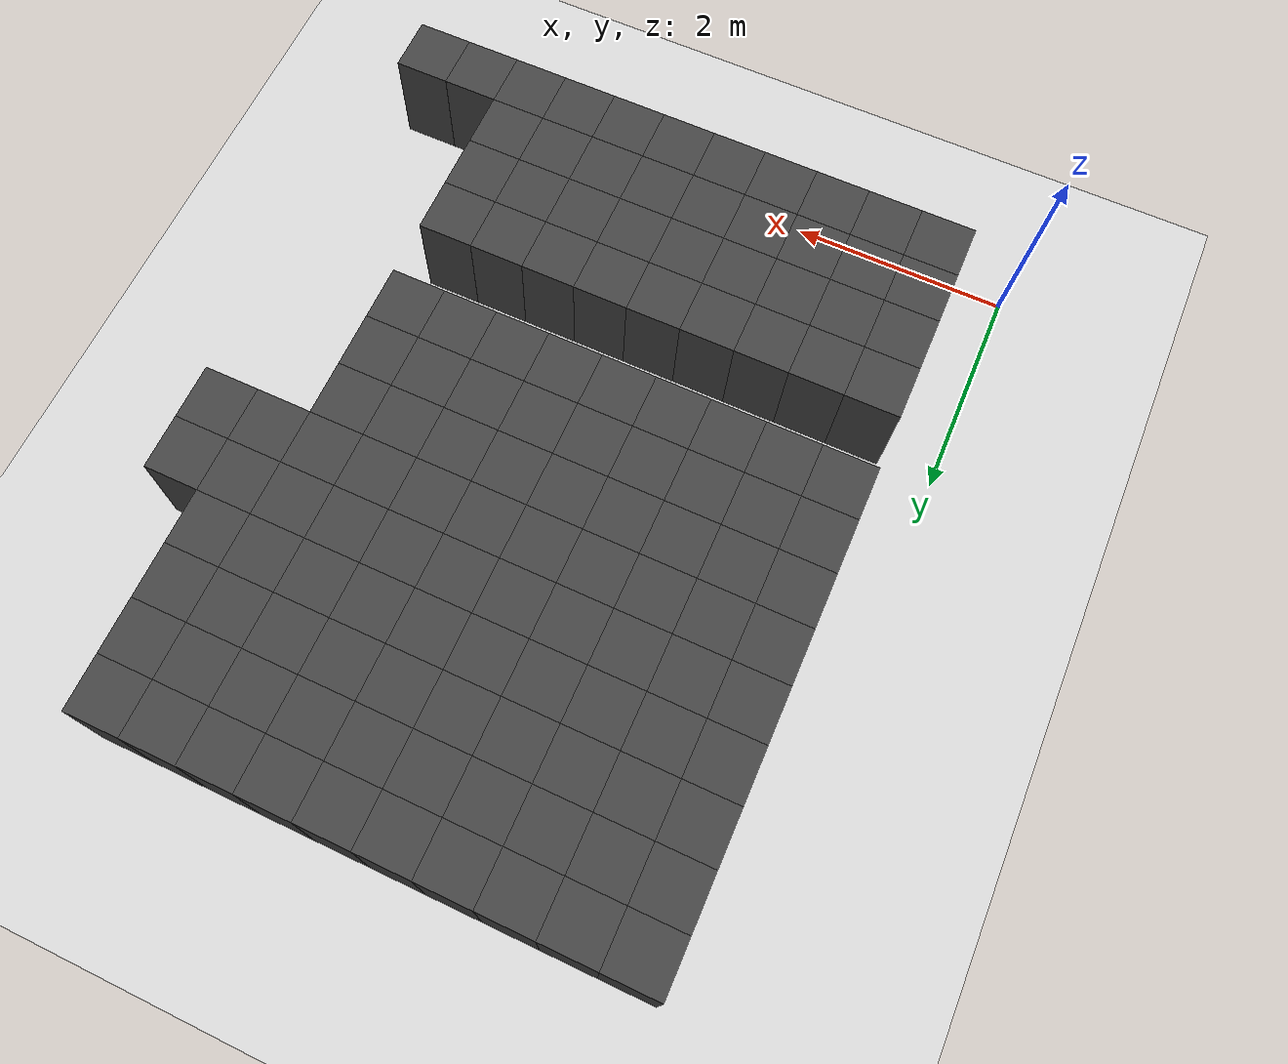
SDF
<sdf version="1.7">
 <world name="map_11779">
  <model name="ground_plane">
   <static>true</static>
   <link name="link">
    <collision name="collision">
     <geometry><plane><normal>0 0 1</normal><size>200 200</size></plane></geometry>
    </collision>
    <visual name="visual">
     <geometry><plane><normal>0 0 1</normal><size>200 200</size></plane></geometry>
     <material><ambient>0.8 0.8 0.8 1</ambient><diffuse>0.8 0.8 0.8 1</diffuse></material>
    </visual>
   </link>
  </model>
  <model name="maze_environment">
   <static>true</static>
   <link name="wall_488">
    <pose>0.750 6.750 0.500 0 0 0</pose>
    <collision name="col"><geometry><box><size>0.5 0.5 1.0</size></box></geometry></collision>
    <visual name="vis">
     <geometry><box><size>0.5 0.5 1.0</size></box></geometry>
     <material><ambient>0.15 0.15 0.15 1</ambient><diffuse>0.25 0.25 0.25 1</diffuse></material>
    </visual>
   </link>
   <link name="wall_489">
    <pose>1.250 6.750 0.500 0 0 0</pose>
    <collision name="col"><geometry><box><size>0.5 0.5 1.0</size></box></geometry></collision>
    <visual name="vis">
     <geometry><box><size>0.5 0.5 1.0</size></box></geometry>
     <material><ambient>0.15 0.15 0.15 1</ambient><diffuse>0.25 0.25 0.25 1</diffuse></material>
    </visual>
   </link>
   <link name="wall_490">
    <pose>1.750 6.750 0.500 0 0 0</pose>
    <collision name="col"><geometry><box><size>0.5 0.5 1.0</size></box></geometry></collision>
    <visual name="vis">
     <geometry><box><size>0.5 0.5 1.0</size></box></geometry>
     <material><ambient>0.15 0.15 0.15 1</ambient><diffuse>0.25 0.25 0.25 1</diffuse></material>
    </visual>
   </link>
   <link name="wall_491">
    <pose>2.250 6.750 0.500 0 0 0</pose>
    <collision name="col"><geometry><box><size>0.5 0.5 1.0</size></box></geometry></collision>
    <visual name="vis">
     <geometry><box><size>0.5 0.5 1.0</size></box></geometry>
     <material><ambient>0.15 0.15 0.15 1</ambient><diffuse>0.25 0.25 0.25 1</diffuse></material>
    </visual>
   </link>
   <link name="wall_492">
    <pose>2.750 6.750 0.500 0 0 0</pose>
    <collision name="col"><geometry><box><size>0.5 0.5 1.0</size></box></geometry></collision>
    <visual name="vis">
     <geometry><box><size>0.5 0.5 1.0</size></box></geometry>
     <material><ambient>0.15 0.15 0.15 1</ambient><diffuse>0.25 0.25 0.25 1</diffuse></material>
    </visual>
   </link>
   <link name="wall_493">
    <pose>3.250 6.750 0.500 0 0 0</pose>
    <collision name="col"><geometry><box><size>0.5 0.5 1.0</size></box></geometry></collision>
    <visual name="vis">
     <geometry><box><size>0.5 0.5 1.0</size></box></geometry>
     <material><ambient>0.15 0.15 0.15 1</ambient><diffuse>0.25 0.25 0.25 1</diffuse></material>
    </visual>
   </link>
   <link name="wall_494">
    <pose>3.750 6.750 0.500 0 0 0</pose>
    <collision name="col"><geometry><box><size>0.5 0.5 1.0</size></box></geometry></collision>
    <visual name="vis">
     <geometry><box><size>0.5 0.5 1.0</size></box></geometry>
     <material><ambient>0.15 0.15 0.15 1</ambient><diffuse>0.25 0.25 0.25 1</diffuse></material>
    </visual>
   </link>
   <link name="wall_495">
    <pose>4.250 6.750 0.500 0 0 0</pose>
    <collision name="col"><geometry><box><size>0.5 0.5 1.0</size></box></geometry></collision>
    <visual name="vis">
     <geometry><box><size>0.5 0.5 1.0</size></box></geometry>
     <material><ambient>0.15 0.15 0.15 1</ambient><diffuse>0.25 0.25 0.25 1</diffuse></material>
    </visual>
   </link>
   <link name="wall_496">
    <pose>4.750 6.750 0.500 0 0 0</pose>
    <collision name="col"><geometry><box><size>0.5 0.5 1.0</size></box></geometry></collision>
    <visual name="vis">
     <geometry><box><size>0.5 0.5 1.0</size></box></geometry>
     <material><ambient>0.15 0.15 0.15 1</ambient><diffuse>0.25 0.25 0.25 1</diffuse></material>
    </visual>
   </link>
   <link name="wall_497">
    <pose>5.250 6.750 0.500 0 0 0</pose>
    <collision name="col"><geometry><box><size>0.5 0.5 1.0</size></box></geometry></collision>
    <visual name="vis">
     <geometry><box><size>0.5 0.5 1.0</size></box></geometry>
     <material><ambient>0.15 0.15 0.15 1</ambient><diffuse>0.25 0.25 0.25 1</diffuse></material>
    </visual>
   </link>
   <link name="wall_522">
    <pose>0.750 6.250 0.500 0 0 0</pose>
    <collision name="col"><geometry><box><size>0.5 0.5 1.0</size></box></geometry></collision>
    <visual name="vis">
     <geometry><box><size>0.5 0.5 1.0</size></box></geometry>
     <material><ambient>0.15 0.15 0.15 1</ambient><diffuse>0.25 0.25 0.25 1</diffuse></material>
    </visual>
   </link>
   <link name="wall_523">
    <pose>1.250 6.250 0.500 0 0 0</pose>
    <collision name="col"><geometry><box><size>0.5 0.5 1.0</size></box></geometry></collision>
    <visual name="vis">
     <geometry><box><size>0.5 0.5 1.0</size></box></geometry>
     <material><ambient>0.15 0.15 0.15 1</ambient><diffuse>0.25 0.25 0.25 1</diffuse></material>
    </visual>
   </link>
   <link name="wall_524">
    <pose>1.750 6.250 0.500 0 0 0</pose>
    <collision name="col"><geometry><box><size>0.5 0.5 1.0</size></box></geometry></collision>
    <visual name="vis">
     <geometry><box><size>0.5 0.5 1.0</size></box></geometry>
     <material><ambient>0.15 0.15 0.15 1</ambient><diffuse>0.25 0.25 0.25 1</diffuse></material>
    </visual>
   </link>
   <link name="wall_525">
    <pose>2.250 6.250 0.500 0 0 0</pose>
    <collision name="col"><geometry><box><size>0.5 0.5 1.0</size></box></geometry></collision>
    <visual name="vis">
     <geometry><box><size>0.5 0.5 1.0</size></box></geometry>
     <material><ambient>0.15 0.15 0.15 1</ambient><diffuse>0.25 0.25 0.25 1</diffuse></material>
    </visual>
   </link>
   <link name="wall_526">
    <pose>2.750 6.250 0.500 0 0 0</pose>
    <collision name="col"><geometry><box><size>0.5 0.5 1.0</size></box></geometry></collision>
    <visual name="vis">
     <geometry><box><size>0.5 0.5 1.0</size></box></geometry>
     <material><ambient>0.15 0.15 0.15 1</ambient><diffuse>0.25 0.25 0.25 1</diffuse></material>
    </visual>
   </link>
   <link name="wall_527">
    <pose>3.250 6.250 0.500 0 0 0</pose>
    <collision name="col"><geometry><box><size>0.5 0.5 1.0</size></box></geometry></collision>
    <visual name="vis">
     <geometry><box><size>0.5 0.5 1.0</size></box></geometry>
     <material><ambient>0.15 0.15 0.15 1</ambient><diffuse>0.25 0.25 0.25 1</diffuse></material>
    </visual>
   </link>
   <link name="wall_528">
    <pose>3.750 6.250 0.500 0 0 0</pose>
    <collision name="col"><geometry><box><size>0.5 0.5 1.0</size></box></geometry></collision>
    <visual name="vis">
     <geometry><box><size>0.5 0.5 1.0</size></box></geometry>
     <material><ambient>0.15 0.15 0.15 1</ambient><diffuse>0.25 0.25 0.25 1</diffuse></material>
    </visual>
   </link>
   <link name="wall_529">
    <pose>4.250 6.250 0.500 0 0 0</pose>
    <collision name="col"><geometry><box><size>0.5 0.5 1.0</size></box></geometry></collision>
    <visual name="vis">
     <geometry><box><size>0.5 0.5 1.0</size></box></geometry>
     <material><ambient>0.15 0.15 0.15 1</ambient><diffuse>0.25 0.25 0.25 1</diffuse></material>
    </visual>
   </link>
   <link name="wall_530">
    <pose>4.750 6.250 0.500 0 0 0</pose>
    <collision name="col"><geometry><box><size>0.5 0.5 1.0</size></box></geometry></collision>
    <visual name="vis">
     <geometry><box><size>0.5 0.5 1.0</size></box></geometry>
     <material><ambient>0.15 0.15 0.15 1</ambient><diffuse>0.25 0.25 0.25 1</diffuse></material>
    </visual>
   </link>
   <link name="wall_531">
    <pose>5.250 6.250 0.500 0 0 0</pose>
    <collision name="col"><geometry><box><size>0.5 0.5 1.0</size></box></geometry></collision>
    <visual name="vis">
     <geometry><box><size>0.5 0.5 1.0</size></box></geometry>
     <material><ambient>0.15 0.15 0.15 1</ambient><diffuse>0.25 0.25 0.25 1</diffuse></material>
    </visual>
   </link>
   <link name="wall_556">
    <pose>0.750 5.750 0.500 0 0 0</pose>
    <collision name="col"><geometry><box><size>0.5 0.5 1.0</size></box></geometry></collision>
    <visual name="vis">
     <geometry><box><size>0.5 0.5 1.0</size></box></geometry>
     <material><ambient>0.15 0.15 0.15 1</ambient><diffuse>0.25 0.25 0.25 1</diffuse></material>
    </visual>
   </link>
   <link name="wall_557">
    <pose>1.250 5.750 0.500 0 0 0</pose>
    <collision name="col"><geometry><box><size>0.5 0.5 1.0</size></box></geometry></collision>
    <visual name="vis">
     <geometry><box><size>0.5 0.5 1.0</size></box></geometry>
     <material><ambient>0.15 0.15 0.15 1</ambient><diffuse>0.25 0.25 0.25 1</diffuse></material>
    </visual>
   </link>
   <link name="wall_558">
    <pose>1.750 5.750 0.500 0 0 0</pose>
    <collision name="col"><geometry><box><size>0.5 0.5 1.0</size></box></geometry></collision>
    <visual name="vis">
     <geometry><box><size>0.5 0.5 1.0</size></box></geometry>
     <material><ambient>0.15 0.15 0.15 1</ambient><diffuse>0.25 0.25 0.25 1</diffuse></material>
    </visual>
   </link>
   <link name="wall_559">
    <pose>2.250 5.750 0.500 0 0 0</pose>
    <collision name="col"><geometry><box><size>0.5 0.5 1.0</size></box></geometry></collision>
    <visual name="vis">
     <geometry><box><size>0.5 0.5 1.0</size></box></geometry>
     <material><ambient>0.15 0.15 0.15 1</ambient><diffuse>0.25 0.25 0.25 1</diffuse></material>
    </visual>
   </link>
   <link name="wall_560">
    <pose>2.750 5.750 0.500 0 0 0</pose>
    <collision name="col"><geometry><box><size>0.5 0.5 1.0</size></box></geometry></collision>
    <visual name="vis">
     <geometry><box><size>0.5 0.5 1.0</size></box></geometry>
     <material><ambient>0.15 0.15 0.15 1</ambient><diffuse>0.25 0.25 0.25 1</diffuse></material>
    </visual>
   </link>
   <link name="wall_561">
    <pose>3.250 5.750 0.500 0 0 0</pose>
    <collision name="col"><geometry><box><size>0.5 0.5 1.0</size></box></geometry></collision>
    <visual name="vis">
     <geometry><box><size>0.5 0.5 1.0</size></box></geometry>
     <material><ambient>0.15 0.15 0.15 1</ambient><diffuse>0.25 0.25 0.25 1</diffuse></material>
    </visual>
   </link>
   <link name="wall_562">
    <pose>3.750 5.750 0.500 0 0 0</pose>
    <collision name="col"><geometry><box><size>0.5 0.5 1.0</size></box></geometry></collision>
    <visual name="vis">
     <geometry><box><size>0.5 0.5 1.0</size></box></geometry>
     <material><ambient>0.15 0.15 0.15 1</ambient><diffuse>0.25 0.25 0.25 1</diffuse></material>
    </visual>
   </link>
   <link name="wall_563">
    <pose>4.250 5.750 0.500 0 0 0</pose>
    <collision name="col"><geometry><box><size>0.5 0.5 1.0</size></box></geometry></collision>
    <visual name="vis">
     <geometry><box><size>0.5 0.5 1.0</size></box></geometry>
     <material><ambient>0.15 0.15 0.15 1</ambient><diffuse>0.25 0.25 0.25 1</diffuse></material>
    </visual>
   </link>
   <link name="wall_564">
    <pose>4.750 5.750 0.500 0 0 0</pose>
    <collision name="col"><geometry><box><size>0.5 0.5 1.0</size></box></geometry></collision>
    <visual name="vis">
     <geometry><box><size>0.5 0.5 1.0</size></box></geometry>
     <material><ambient>0.15 0.15 0.15 1</ambient><diffuse>0.25 0.25 0.25 1</diffuse></material>
    </visual>
   </link>
   <link name="wall_565">
    <pose>5.250 5.750 0.500 0 0 0</pose>
    <collision name="col"><geometry><box><size>0.5 0.5 1.0</size></box></geometry></collision>
    <visual name="vis">
     <geometry><box><size>0.5 0.5 1.0</size></box></geometry>
     <material><ambient>0.15 0.15 0.15 1</ambient><diffuse>0.25 0.25 0.25 1</diffuse></material>
    </visual>
   </link>
   <link name="wall_590">
    <pose>0.750 5.250 0.500 0 0 0</pose>
    <collision name="col"><geometry><box><size>0.5 0.5 1.0</size></box></geometry></collision>
    <visual name="vis">
     <geometry><box><size>0.5 0.5 1.0</size></box></geometry>
     <material><ambient>0.15 0.15 0.15 1</ambient><diffuse>0.25 0.25 0.25 1</diffuse></material>
    </visual>
   </link>
   <link name="wall_591">
    <pose>1.250 5.250 0.500 0 0 0</pose>
    <collision name="col"><geometry><box><size>0.5 0.5 1.0</size></box></geometry></collision>
    <visual name="vis">
     <geometry><box><size>0.5 0.5 1.0</size></box></geometry>
     <material><ambient>0.15 0.15 0.15 1</ambient><diffuse>0.25 0.25 0.25 1</diffuse></material>
    </visual>
   </link>
   <link name="wall_592">
    <pose>1.750 5.250 0.500 0 0 0</pose>
    <collision name="col"><geometry><box><size>0.5 0.5 1.0</size></box></geometry></collision>
    <visual name="vis">
     <geometry><box><size>0.5 0.5 1.0</size></box></geometry>
     <material><ambient>0.15 0.15 0.15 1</ambient><diffuse>0.25 0.25 0.25 1</diffuse></material>
    </visual>
   </link>
   <link name="wall_593">
    <pose>2.250 5.250 0.500 0 0 0</pose>
    <collision name="col"><geometry><box><size>0.5 0.5 1.0</size></box></geometry></collision>
    <visual name="vis">
     <geometry><box><size>0.5 0.5 1.0</size></box></geometry>
     <material><ambient>0.15 0.15 0.15 1</ambient><diffuse>0.25 0.25 0.25 1</diffuse></material>
    </visual>
   </link>
   <link name="wall_594">
    <pose>2.750 5.250 0.500 0 0 0</pose>
    <collision name="col"><geometry><box><size>0.5 0.5 1.0</size></box></geometry></collision>
    <visual name="vis">
     <geometry><box><size>0.5 0.5 1.0</size></box></geometry>
     <material><ambient>0.15 0.15 0.15 1</ambient><diffuse>0.25 0.25 0.25 1</diffuse></material>
    </visual>
   </link>
   <link name="wall_595">
    <pose>3.250 5.250 0.500 0 0 0</pose>
    <collision name="col"><geometry><box><size>0.5 0.5 1.0</size></box></geometry></collision>
    <visual name="vis">
     <geometry><box><size>0.5 0.5 1.0</size></box></geometry>
     <material><ambient>0.15 0.15 0.15 1</ambient><diffuse>0.25 0.25 0.25 1</diffuse></material>
    </visual>
   </link>
   <link name="wall_596">
    <pose>3.750 5.250 0.500 0 0 0</pose>
    <collision name="col"><geometry><box><size>0.5 0.5 1.0</size></box></geometry></collision>
    <visual name="vis">
     <geometry><box><size>0.5 0.5 1.0</size></box></geometry>
     <material><ambient>0.15 0.15 0.15 1</ambient><diffuse>0.25 0.25 0.25 1</diffuse></material>
    </visual>
   </link>
   <link name="wall_597">
    <pose>4.250 5.250 0.500 0 0 0</pose>
    <collision name="col"><geometry><box><size>0.5 0.5 1.0</size></box></geometry></collision>
    <visual name="vis">
     <geometry><box><size>0.5 0.5 1.0</size></box></geometry>
     <material><ambient>0.15 0.15 0.15 1</ambient><diffuse>0.25 0.25 0.25 1</diffuse></material>
    </visual>
   </link>
   <link name="wall_598">
    <pose>4.750 5.250 0.500 0 0 0</pose>
    <collision name="col"><geometry><box><size>0.5 0.5 1.0</size></box></geometry></collision>
    <visual name="vis">
     <geometry><box><size>0.5 0.5 1.0</size></box></geometry>
     <material><ambient>0.15 0.15 0.15 1</ambient><diffuse>0.25 0.25 0.25 1</diffuse></material>
    </visual>
   </link>
   <link name="wall_599">
    <pose>5.250 5.250 0.500 0 0 0</pose>
    <collision name="col"><geometry><box><size>0.5 0.5 1.0</size></box></geometry></collision>
    <visual name="vis">
     <geometry><box><size>0.5 0.5 1.0</size></box></geometry>
     <material><ambient>0.15 0.15 0.15 1</ambient><diffuse>0.25 0.25 0.25 1</diffuse></material>
    </visual>
   </link>
   <link name="wall_624">
    <pose>0.750 4.750 0.500 0 0 0</pose>
    <collision name="col"><geometry><box><size>0.5 0.5 1.0</size></box></geometry></collision>
    <visual name="vis">
     <geometry><box><size>0.5 0.5 1.0</size></box></geometry>
     <material><ambient>0.15 0.15 0.15 1</ambient><diffuse>0.25 0.25 0.25 1</diffuse></material>
    </visual>
   </link>
   <link name="wall_625">
    <pose>1.250 4.750 0.500 0 0 0</pose>
    <collision name="col"><geometry><box><size>0.5 0.5 1.0</size></box></geometry></collision>
    <visual name="vis">
     <geometry><box><size>0.5 0.5 1.0</size></box></geometry>
     <material><ambient>0.15 0.15 0.15 1</ambient><diffuse>0.25 0.25 0.25 1</diffuse></material>
    </visual>
   </link>
   <link name="wall_626">
    <pose>1.750 4.750 0.500 0 0 0</pose>
    <collision name="col"><geometry><box><size>0.5 0.5 1.0</size></box></geometry></collision>
    <visual name="vis">
     <geometry><box><size>0.5 0.5 1.0</size></box></geometry>
     <material><ambient>0.15 0.15 0.15 1</ambient><diffuse>0.25 0.25 0.25 1</diffuse></material>
    </visual>
   </link>
   <link name="wall_627">
    <pose>2.250 4.750 0.500 0 0 0</pose>
    <collision name="col"><geometry><box><size>0.5 0.5 1.0</size></box></geometry></collision>
    <visual name="vis">
     <geometry><box><size>0.5 0.5 1.0</size></box></geometry>
     <material><ambient>0.15 0.15 0.15 1</ambient><diffuse>0.25 0.25 0.25 1</diffuse></material>
    </visual>
   </link>
   <link name="wall_628">
    <pose>2.750 4.750 0.500 0 0 0</pose>
    <collision name="col"><geometry><box><size>0.5 0.5 1.0</size></box></geometry></collision>
    <visual name="vis">
     <geometry><box><size>0.5 0.5 1.0</size></box></geometry>
     <material><ambient>0.15 0.15 0.15 1</ambient><diffuse>0.25 0.25 0.25 1</diffuse></material>
    </visual>
   </link>
   <link name="wall_629">
    <pose>3.250 4.750 0.500 0 0 0</pose>
    <collision name="col"><geometry><box><size>0.5 0.5 1.0</size></box></geometry></collision>
    <visual name="vis">
     <geometry><box><size>0.5 0.5 1.0</size></box></geometry>
     <material><ambient>0.15 0.15 0.15 1</ambient><diffuse>0.25 0.25 0.25 1</diffuse></material>
    </visual>
   </link>
   <link name="wall_630">
    <pose>3.750 4.750 0.500 0 0 0</pose>
    <collision name="col"><geometry><box><size>0.5 0.5 1.0</size></box></geometry></collision>
    <visual name="vis">
     <geometry><box><size>0.5 0.5 1.0</size></box></geometry>
     <material><ambient>0.15 0.15 0.15 1</ambient><diffuse>0.25 0.25 0.25 1</diffuse></material>
    </visual>
   </link>
   <link name="wall_631">
    <pose>4.250 4.750 0.500 0 0 0</pose>
    <collision name="col"><geometry><box><size>0.5 0.5 1.0</size></box></geometry></collision>
    <visual name="vis">
     <geometry><box><size>0.5 0.5 1.0</size></box></geometry>
     <material><ambient>0.15 0.15 0.15 1</ambient><diffuse>0.25 0.25 0.25 1</diffuse></material>
    </visual>
   </link>
   <link name="wall_632">
    <pose>4.750 4.750 0.500 0 0 0</pose>
    <collision name="col"><geometry><box><size>0.5 0.5 1.0</size></box></geometry></collision>
    <visual name="vis">
     <geometry><box><size>0.5 0.5 1.0</size></box></geometry>
     <material><ambient>0.15 0.15 0.15 1</ambient><diffuse>0.25 0.25 0.25 1</diffuse></material>
    </visual>
   </link>
   <link name="wall_633">
    <pose>5.250 4.750 0.500 0 0 0</pose>
    <collision name="col"><geometry><box><size>0.5 0.5 1.0</size></box></geometry></collision>
    <visual name="vis">
     <geometry><box><size>0.5 0.5 1.0</size></box></geometry>
     <material><ambient>0.15 0.15 0.15 1</ambient><diffuse>0.25 0.25 0.25 1</diffuse></material>
    </visual>
   </link>
   <link name="wall_634">
    <pose>5.750 4.750 0.500 0 0 0</pose>
    <collision name="col"><geometry><box><size>0.5 0.5 1.0</size></box></geometry></collision>
    <visual name="vis">
     <geometry><box><size>0.5 0.5 1.0</size></box></geometry>
     <material><ambient>0.15 0.15 0.15 1</ambient><diffuse>0.25 0.25 0.25 1</diffuse></material>
    </visual>
   </link>
   <link name="wall_665">
    <pose>0.750 4.250 0.500 0 0 0</pose>
    <collision name="col"><geometry><box><size>0.5 0.5 1.0</size></box></geometry></collision>
    <visual name="vis">
     <geometry><box><size>0.5 0.5 1.0</size></box></geometry>
     <material><ambient>0.15 0.15 0.15 1</ambient><diffuse>0.25 0.25 0.25 1</diffuse></material>
    </visual>
   </link>
   <link name="wall_666">
    <pose>1.250 4.250 0.500 0 0 0</pose>
    <collision name="col"><geometry><box><size>0.5 0.5 1.0</size></box></geometry></collision>
    <visual name="vis">
     <geometry><box><size>0.5 0.5 1.0</size></box></geometry>
     <material><ambient>0.15 0.15 0.15 1</ambient><diffuse>0.25 0.25 0.25 1</diffuse></material>
    </visual>
   </link>
   <link name="wall_667">
    <pose>1.750 4.250 0.500 0 0 0</pose>
    <collision name="col"><geometry><box><size>0.5 0.5 1.0</size></box></geometry></collision>
    <visual name="vis">
     <geometry><box><size>0.5 0.5 1.0</size></box></geometry>
     <material><ambient>0.15 0.15 0.15 1</ambient><diffuse>0.25 0.25 0.25 1</diffuse></material>
    </visual>
   </link>
   <link name="wall_668">
    <pose>2.250 4.250 0.500 0 0 0</pose>
    <collision name="col"><geometry><box><size>0.5 0.5 1.0</size></box></geometry></collision>
    <visual name="vis">
     <geometry><box><size>0.5 0.5 1.0</size></box></geometry>
     <material><ambient>0.15 0.15 0.15 1</ambient><diffuse>0.25 0.25 0.25 1</diffuse></material>
    </visual>
   </link>
   <link name="wall_669">
    <pose>2.750 4.250 0.500 0 0 0</pose>
    <collision name="col"><geometry><box><size>0.5 0.5 1.0</size></box></geometry></collision>
    <visual name="vis">
     <geometry><box><size>0.5 0.5 1.0</size></box></geometry>
     <material><ambient>0.15 0.15 0.15 1</ambient><diffuse>0.25 0.25 0.25 1</diffuse></material>
    </visual>
   </link>
   <link name="wall_670">
    <pose>3.250 4.250 0.500 0 0 0</pose>
    <collision name="col"><geometry><box><size>0.5 0.5 1.0</size></box></geometry></collision>
    <visual name="vis">
     <geometry><box><size>0.5 0.5 1.0</size></box></geometry>
     <material><ambient>0.15 0.15 0.15 1</ambient><diffuse>0.25 0.25 0.25 1</diffuse></material>
    </visual>
   </link>
   <link name="wall_671">
    <pose>3.750 4.250 0.500 0 0 0</pose>
    <collision name="col"><geometry><box><size>0.5 0.5 1.0</size></box></geometry></collision>
    <visual name="vis">
     <geometry><box><size>0.5 0.5 1.0</size></box></geometry>
     <material><ambient>0.15 0.15 0.15 1</ambient><diffuse>0.25 0.25 0.25 1</diffuse></material>
    </visual>
   </link>
   <link name="wall_672">
    <pose>4.250 4.250 0.500 0 0 0</pose>
    <collision name="col"><geometry><box><size>0.5 0.5 1.0</size></box></geometry></collision>
    <visual name="vis">
     <geometry><box><size>0.5 0.5 1.0</size></box></geometry>
     <material><ambient>0.15 0.15 0.15 1</ambient><diffuse>0.25 0.25 0.25 1</diffuse></material>
    </visual>
   </link>
   <link name="wall_673">
    <pose>4.750 4.250 0.500 0 0 0</pose>
    <collision name="col"><geometry><box><size>0.5 0.5 1.0</size></box></geometry></collision>
    <visual name="vis">
     <geometry><box><size>0.5 0.5 1.0</size></box></geometry>
     <material><ambient>0.15 0.15 0.15 1</ambient><diffuse>0.25 0.25 0.25 1</diffuse></material>
    </visual>
   </link>
   <link name="wall_674">
    <pose>5.250 4.250 0.500 0 0 0</pose>
    <collision name="col"><geometry><box><size>0.5 0.5 1.0</size></box></geometry></collision>
    <visual name="vis">
     <geometry><box><size>0.5 0.5 1.0</size></box></geometry>
     <material><ambient>0.15 0.15 0.15 1</ambient><diffuse>0.25 0.25 0.25 1</diffuse></material>
    </visual>
   </link>
   <link name="wall_675">
    <pose>5.750 4.250 0.500 0 0 0</pose>
    <collision name="col"><geometry><box><size>0.5 0.5 1.0</size></box></geometry></collision>
    <visual name="vis">
     <geometry><box><size>0.5 0.5 1.0</size></box></geometry>
     <material><ambient>0.15 0.15 0.15 1</ambient><diffuse>0.25 0.25 0.25 1</diffuse></material>
    </visual>
   </link>
   <link name="wall_713">
    <pose>0.750 3.750 0.500 0 0 0</pose>
    <collision name="col"><geometry><box><size>0.5 0.5 1.0</size></box></geometry></collision>
    <visual name="vis">
     <geometry><box><size>0.5 0.5 1.0</size></box></geometry>
     <material><ambient>0.15 0.15 0.15 1</ambient><diffuse>0.25 0.25 0.25 1</diffuse></material>
    </visual>
   </link>
   <link name="wall_714">
    <pose>1.250 3.750 0.500 0 0 0</pose>
    <collision name="col"><geometry><box><size>0.5 0.5 1.0</size></box></geometry></collision>
    <visual name="vis">
     <geometry><box><size>0.5 0.5 1.0</size></box></geometry>
     <material><ambient>0.15 0.15 0.15 1</ambient><diffuse>0.25 0.25 0.25 1</diffuse></material>
    </visual>
   </link>
   <link name="wall_715">
    <pose>1.750 3.750 0.500 0 0 0</pose>
    <collision name="col"><geometry><box><size>0.5 0.5 1.0</size></box></geometry></collision>
    <visual name="vis">
     <geometry><box><size>0.5 0.5 1.0</size></box></geometry>
     <material><ambient>0.15 0.15 0.15 1</ambient><diffuse>0.25 0.25 0.25 1</diffuse></material>
    </visual>
   </link>
   <link name="wall_716">
    <pose>2.250 3.750 0.500 0 0 0</pose>
    <collision name="col"><geometry><box><size>0.5 0.5 1.0</size></box></geometry></collision>
    <visual name="vis">
     <geometry><box><size>0.5 0.5 1.0</size></box></geometry>
     <material><ambient>0.15 0.15 0.15 1</ambient><diffuse>0.25 0.25 0.25 1</diffuse></material>
    </visual>
   </link>
   <link name="wall_717">
    <pose>2.750 3.750 0.500 0 0 0</pose>
    <collision name="col"><geometry><box><size>0.5 0.5 1.0</size></box></geometry></collision>
    <visual name="vis">
     <geometry><box><size>0.5 0.5 1.0</size></box></geometry>
     <material><ambient>0.15 0.15 0.15 1</ambient><diffuse>0.25 0.25 0.25 1</diffuse></material>
    </visual>
   </link>
   <link name="wall_718">
    <pose>3.250 3.750 0.500 0 0 0</pose>
    <collision name="col"><geometry><box><size>0.5 0.5 1.0</size></box></geometry></collision>
    <visual name="vis">
     <geometry><box><size>0.5 0.5 1.0</size></box></geometry>
     <material><ambient>0.15 0.15 0.15 1</ambient><diffuse>0.25 0.25 0.25 1</diffuse></material>
    </visual>
   </link>
   <link name="wall_719">
    <pose>3.750 3.750 0.500 0 0 0</pose>
    <collision name="col"><geometry><box><size>0.5 0.5 1.0</size></box></geometry></collision>
    <visual name="vis">
     <geometry><box><size>0.5 0.5 1.0</size></box></geometry>
     <material><ambient>0.15 0.15 0.15 1</ambient><diffuse>0.25 0.25 0.25 1</diffuse></material>
    </visual>
   </link>
   <link name="wall_720">
    <pose>4.250 3.750 0.500 0 0 0</pose>
    <collision name="col"><geometry><box><size>0.5 0.5 1.0</size></box></geometry></collision>
    <visual name="vis">
     <geometry><box><size>0.5 0.5 1.0</size></box></geometry>
     <material><ambient>0.15 0.15 0.15 1</ambient><diffuse>0.25 0.25 0.25 1</diffuse></material>
    </visual>
   </link>
   <link name="wall_721">
    <pose>4.750 3.750 0.500 0 0 0</pose>
    <collision name="col"><geometry><box><size>0.5 0.5 1.0</size></box></geometry></collision>
    <visual name="vis">
     <geometry><box><size>0.5 0.5 1.0</size></box></geometry>
     <material><ambient>0.15 0.15 0.15 1</ambient><diffuse>0.25 0.25 0.25 1</diffuse></material>
    </visual>
   </link>
   <link name="wall_756">
    <pose>0.750 3.250 0.500 0 0 0</pose>
    <collision name="col"><geometry><box><size>0.5 0.5 1.0</size></box></geometry></collision>
    <visual name="vis">
     <geometry><box><size>0.5 0.5 1.0</size></box></geometry>
     <material><ambient>0.15 0.15 0.15 1</ambient><diffuse>0.25 0.25 0.25 1</diffuse></material>
    </visual>
   </link>
   <link name="wall_757">
    <pose>1.250 3.250 0.500 0 0 0</pose>
    <collision name="col"><geometry><box><size>0.5 0.5 1.0</size></box></geometry></collision>
    <visual name="vis">
     <geometry><box><size>0.5 0.5 1.0</size></box></geometry>
     <material><ambient>0.15 0.15 0.15 1</ambient><diffuse>0.25 0.25 0.25 1</diffuse></material>
    </visual>
   </link>
   <link name="wall_758">
    <pose>1.750 3.250 0.500 0 0 0</pose>
    <collision name="col"><geometry><box><size>0.5 0.5 1.0</size></box></geometry></collision>
    <visual name="vis">
     <geometry><box><size>0.5 0.5 1.0</size></box></geometry>
     <material><ambient>0.15 0.15 0.15 1</ambient><diffuse>0.25 0.25 0.25 1</diffuse></material>
    </visual>
   </link>
   <link name="wall_759">
    <pose>2.250 3.250 0.500 0 0 0</pose>
    <collision name="col"><geometry><box><size>0.5 0.5 1.0</size></box></geometry></collision>
    <visual name="vis">
     <geometry><box><size>0.5 0.5 1.0</size></box></geometry>
     <material><ambient>0.15 0.15 0.15 1</ambient><diffuse>0.25 0.25 0.25 1</diffuse></material>
    </visual>
   </link>
   <link name="wall_760">
    <pose>2.750 3.250 0.500 0 0 0</pose>
    <collision name="col"><geometry><box><size>0.5 0.5 1.0</size></box></geometry></collision>
    <visual name="vis">
     <geometry><box><size>0.5 0.5 1.0</size></box></geometry>
     <material><ambient>0.15 0.15 0.15 1</ambient><diffuse>0.25 0.25 0.25 1</diffuse></material>
    </visual>
   </link>
   <link name="wall_761">
    <pose>3.250 3.250 0.500 0 0 0</pose>
    <collision name="col"><geometry><box><size>0.5 0.5 1.0</size></box></geometry></collision>
    <visual name="vis">
     <geometry><box><size>0.5 0.5 1.0</size></box></geometry>
     <material><ambient>0.15 0.15 0.15 1</ambient><diffuse>0.25 0.25 0.25 1</diffuse></material>
    </visual>
   </link>
   <link name="wall_762">
    <pose>3.750 3.250 0.500 0 0 0</pose>
    <collision name="col"><geometry><box><size>0.5 0.5 1.0</size></box></geometry></collision>
    <visual name="vis">
     <geometry><box><size>0.5 0.5 1.0</size></box></geometry>
     <material><ambient>0.15 0.15 0.15 1</ambient><diffuse>0.25 0.25 0.25 1</diffuse></material>
    </visual>
   </link>
   <link name="wall_763">
    <pose>4.250 3.250 0.500 0 0 0</pose>
    <collision name="col"><geometry><box><size>0.5 0.5 1.0</size></box></geometry></collision>
    <visual name="vis">
     <geometry><box><size>0.5 0.5 1.0</size></box></geometry>
     <material><ambient>0.15 0.15 0.15 1</ambient><diffuse>0.25 0.25 0.25 1</diffuse></material>
    </visual>
   </link>
   <link name="wall_764">
    <pose>4.750 3.250 0.500 0 0 0</pose>
    <collision name="col"><geometry><box><size>0.5 0.5 1.0</size></box></geometry></collision>
    <visual name="vis">
     <geometry><box><size>0.5 0.5 1.0</size></box></geometry>
     <material><ambient>0.15 0.15 0.15 1</ambient><diffuse>0.25 0.25 0.25 1</diffuse></material>
    </visual>
   </link>
   <link name="wall_799">
    <pose>0.750 2.750 0.500 0 0 0</pose>
    <collision name="col"><geometry><box><size>0.5 0.5 1.0</size></box></geometry></collision>
    <visual name="vis">
     <geometry><box><size>0.5 0.5 1.0</size></box></geometry>
     <material><ambient>0.15 0.15 0.15 1</ambient><diffuse>0.25 0.25 0.25 1</diffuse></material>
    </visual>
   </link>
   <link name="wall_800">
    <pose>1.250 2.750 0.500 0 0 0</pose>
    <collision name="col"><geometry><box><size>0.5 0.5 1.0</size></box></geometry></collision>
    <visual name="vis">
     <geometry><box><size>0.5 0.5 1.0</size></box></geometry>
     <material><ambient>0.15 0.15 0.15 1</ambient><diffuse>0.25 0.25 0.25 1</diffuse></material>
    </visual>
   </link>
   <link name="wall_801">
    <pose>1.750 2.750 0.500 0 0 0</pose>
    <collision name="col"><geometry><box><size>0.5 0.5 1.0</size></box></geometry></collision>
    <visual name="vis">
     <geometry><box><size>0.5 0.5 1.0</size></box></geometry>
     <material><ambient>0.15 0.15 0.15 1</ambient><diffuse>0.25 0.25 0.25 1</diffuse></material>
    </visual>
   </link>
   <link name="wall_802">
    <pose>2.250 2.750 0.500 0 0 0</pose>
    <collision name="col"><geometry><box><size>0.5 0.5 1.0</size></box></geometry></collision>
    <visual name="vis">
     <geometry><box><size>0.5 0.5 1.0</size></box></geometry>
     <material><ambient>0.15 0.15 0.15 1</ambient><diffuse>0.25 0.25 0.25 1</diffuse></material>
    </visual>
   </link>
   <link name="wall_803">
    <pose>2.750 2.750 0.500 0 0 0</pose>
    <collision name="col"><geometry><box><size>0.5 0.5 1.0</size></box></geometry></collision>
    <visual name="vis">
     <geometry><box><size>0.5 0.5 1.0</size></box></geometry>
     <material><ambient>0.15 0.15 0.15 1</ambient><diffuse>0.25 0.25 0.25 1</diffuse></material>
    </visual>
   </link>
   <link name="wall_804">
    <pose>3.250 2.750 0.500 0 0 0</pose>
    <collision name="col"><geometry><box><size>0.5 0.5 1.0</size></box></geometry></collision>
    <visual name="vis">
     <geometry><box><size>0.5 0.5 1.0</size></box></geometry>
     <material><ambient>0.15 0.15 0.15 1</ambient><diffuse>0.25 0.25 0.25 1</diffuse></material>
    </visual>
   </link>
   <link name="wall_805">
    <pose>3.750 2.750 0.500 0 0 0</pose>
    <collision name="col"><geometry><box><size>0.5 0.5 1.0</size></box></geometry></collision>
    <visual name="vis">
     <geometry><box><size>0.5 0.5 1.0</size></box></geometry>
     <material><ambient>0.15 0.15 0.15 1</ambient><diffuse>0.25 0.25 0.25 1</diffuse></material>
    </visual>
   </link>
   <link name="wall_806">
    <pose>4.250 2.750 0.500 0 0 0</pose>
    <collision name="col"><geometry><box><size>0.5 0.5 1.0</size></box></geometry></collision>
    <visual name="vis">
     <geometry><box><size>0.5 0.5 1.0</size></box></geometry>
     <material><ambient>0.15 0.15 0.15 1</ambient><diffuse>0.25 0.25 0.25 1</diffuse></material>
    </visual>
   </link>
   <link name="wall_807">
    <pose>4.750 2.750 0.500 0 0 0</pose>
    <collision name="col"><geometry><box><size>0.5 0.5 1.0</size></box></geometry></collision>
    <visual name="vis">
     <geometry><box><size>0.5 0.5 1.0</size></box></geometry>
     <material><ambient>0.15 0.15 0.15 1</ambient><diffuse>0.25 0.25 0.25 1</diffuse></material>
    </visual>
   </link>
   <link name="wall_870">
    <pose>0.750 1.750 0.500 0 0 0</pose>
    <collision name="col"><geometry><box><size>0.5 0.5 1.0</size></box></geometry></collision>
    <visual name="vis">
     <geometry><box><size>0.5 0.5 1.0</size></box></geometry>
     <material><ambient>0.15 0.15 0.15 1</ambient><diffuse>0.25 0.25 0.25 1</diffuse></material>
    </visual>
   </link>
   <link name="wall_871">
    <pose>1.250 1.750 0.500 0 0 0</pose>
    <collision name="col"><geometry><box><size>0.5 0.5 1.0</size></box></geometry></collision>
    <visual name="vis">
     <geometry><box><size>0.5 0.5 1.0</size></box></geometry>
     <material><ambient>0.15 0.15 0.15 1</ambient><diffuse>0.25 0.25 0.25 1</diffuse></material>
    </visual>
   </link>
   <link name="wall_872">
    <pose>1.750 1.750 0.500 0 0 0</pose>
    <collision name="col"><geometry><box><size>0.5 0.5 1.0</size></box></geometry></collision>
    <visual name="vis">
     <geometry><box><size>0.5 0.5 1.0</size></box></geometry>
     <material><ambient>0.15 0.15 0.15 1</ambient><diffuse>0.25 0.25 0.25 1</diffuse></material>
    </visual>
   </link>
   <link name="wall_873">
    <pose>2.250 1.750 0.500 0 0 0</pose>
    <collision name="col"><geometry><box><size>0.5 0.5 1.0</size></box></geometry></collision>
    <visual name="vis">
     <geometry><box><size>0.5 0.5 1.0</size></box></geometry>
     <material><ambient>0.15 0.15 0.15 1</ambient><diffuse>0.25 0.25 0.25 1</diffuse></material>
    </visual>
   </link>
   <link name="wall_874">
    <pose>2.750 1.750 0.500 0 0 0</pose>
    <collision name="col"><geometry><box><size>0.5 0.5 1.0</size></box></geometry></collision>
    <visual name="vis">
     <geometry><box><size>0.5 0.5 1.0</size></box></geometry>
     <material><ambient>0.15 0.15 0.15 1</ambient><diffuse>0.25 0.25 0.25 1</diffuse></material>
    </visual>
   </link>
   <link name="wall_875">
    <pose>3.250 1.750 0.500 0 0 0</pose>
    <collision name="col"><geometry><box><size>0.5 0.5 1.0</size></box></geometry></collision>
    <visual name="vis">
     <geometry><box><size>0.5 0.5 1.0</size></box></geometry>
     <material><ambient>0.15 0.15 0.15 1</ambient><diffuse>0.25 0.25 0.25 1</diffuse></material>
    </visual>
   </link>
   <link name="wall_876">
    <pose>3.750 1.750 0.500 0 0 0</pose>
    <collision name="col"><geometry><box><size>0.5 0.5 1.0</size></box></geometry></collision>
    <visual name="vis">
     <geometry><box><size>0.5 0.5 1.0</size></box></geometry>
     <material><ambient>0.15 0.15 0.15 1</ambient><diffuse>0.25 0.25 0.25 1</diffuse></material>
    </visual>
   </link>
   <link name="wall_877">
    <pose>4.250 1.750 0.500 0 0 0</pose>
    <collision name="col"><geometry><box><size>0.5 0.5 1.0</size></box></geometry></collision>
    <visual name="vis">
     <geometry><box><size>0.5 0.5 1.0</size></box></geometry>
     <material><ambient>0.15 0.15 0.15 1</ambient><diffuse>0.25 0.25 0.25 1</diffuse></material>
    </visual>
   </link>
   <link name="wall_878">
    <pose>4.750 1.750 0.500 0 0 0</pose>
    <collision name="col"><geometry><box><size>0.5 0.5 1.0</size></box></geometry></collision>
    <visual name="vis">
     <geometry><box><size>0.5 0.5 1.0</size></box></geometry>
     <material><ambient>0.15 0.15 0.15 1</ambient><diffuse>0.25 0.25 0.25 1</diffuse></material>
    </visual>
   </link>
   <link name="wall_912">
    <pose>0.750 1.250 0.500 0 0 0</pose>
    <collision name="col"><geometry><box><size>0.5 0.5 1.0</size></box></geometry></collision>
    <visual name="vis">
     <geometry><box><size>0.5 0.5 1.0</size></box></geometry>
     <material><ambient>0.15 0.15 0.15 1</ambient><diffuse>0.25 0.25 0.25 1</diffuse></material>
    </visual>
   </link>
   <link name="wall_913">
    <pose>1.250 1.250 0.500 0 0 0</pose>
    <collision name="col"><geometry><box><size>0.5 0.5 1.0</size></box></geometry></collision>
    <visual name="vis">
     <geometry><box><size>0.5 0.5 1.0</size></box></geometry>
     <material><ambient>0.15 0.15 0.15 1</ambient><diffuse>0.25 0.25 0.25 1</diffuse></material>
    </visual>
   </link>
   <link name="wall_914">
    <pose>1.750 1.250 0.500 0 0 0</pose>
    <collision name="col"><geometry><box><size>0.5 0.5 1.0</size></box></geometry></collision>
    <visual name="vis">
     <geometry><box><size>0.5 0.5 1.0</size></box></geometry>
     <material><ambient>0.15 0.15 0.15 1</ambient><diffuse>0.25 0.25 0.25 1</diffuse></material>
    </visual>
   </link>
   <link name="wall_915">
    <pose>2.250 1.250 0.500 0 0 0</pose>
    <collision name="col"><geometry><box><size>0.5 0.5 1.0</size></box></geometry></collision>
    <visual name="vis">
     <geometry><box><size>0.5 0.5 1.0</size></box></geometry>
     <material><ambient>0.15 0.15 0.15 1</ambient><diffuse>0.25 0.25 0.25 1</diffuse></material>
    </visual>
   </link>
   <link name="wall_916">
    <pose>2.750 1.250 0.500 0 0 0</pose>
    <collision name="col"><geometry><box><size>0.5 0.5 1.0</size></box></geometry></collision>
    <visual name="vis">
     <geometry><box><size>0.5 0.5 1.0</size></box></geometry>
     <material><ambient>0.15 0.15 0.15 1</ambient><diffuse>0.25 0.25 0.25 1</diffuse></material>
    </visual>
   </link>
   <link name="wall_917">
    <pose>3.250 1.250 0.500 0 0 0</pose>
    <collision name="col"><geometry><box><size>0.5 0.5 1.0</size></box></geometry></collision>
    <visual name="vis">
     <geometry><box><size>0.5 0.5 1.0</size></box></geometry>
     <material><ambient>0.15 0.15 0.15 1</ambient><diffuse>0.25 0.25 0.25 1</diffuse></material>
    </visual>
   </link>
   <link name="wall_918">
    <pose>3.750 1.250 0.500 0 0 0</pose>
    <collision name="col"><geometry><box><size>0.5 0.5 1.0</size></box></geometry></collision>
    <visual name="vis">
     <geometry><box><size>0.5 0.5 1.0</size></box></geometry>
     <material><ambient>0.15 0.15 0.15 1</ambient><diffuse>0.25 0.25 0.25 1</diffuse></material>
    </visual>
   </link>
   <link name="wall_919">
    <pose>4.250 1.250 0.500 0 0 0</pose>
    <collision name="col"><geometry><box><size>0.5 0.5 1.0</size></box></geometry></collision>
    <visual name="vis">
     <geometry><box><size>0.5 0.5 1.0</size></box></geometry>
     <material><ambient>0.15 0.15 0.15 1</ambient><diffuse>0.25 0.25 0.25 1</diffuse></material>
    </visual>
   </link>
   <link name="wall_920">
    <pose>4.750 1.250 0.500 0 0 0</pose>
    <collision name="col"><geometry><box><size>0.5 0.5 1.0</size></box></geometry></collision>
    <visual name="vis">
     <geometry><box><size>0.5 0.5 1.0</size></box></geometry>
     <material><ambient>0.15 0.15 0.15 1</ambient><diffuse>0.25 0.25 0.25 1</diffuse></material>
    </visual>
   </link>
   <link name="wall_954">
    <pose>0.750 0.750 0.500 0 0 0</pose>
    <collision name="col"><geometry><box><size>0.5 0.5 1.0</size></box></geometry></collision>
    <visual name="vis">
     <geometry><box><size>0.5 0.5 1.0</size></box></geometry>
     <material><ambient>0.15 0.15 0.15 1</ambient><diffuse>0.25 0.25 0.25 1</diffuse></material>
    </visual>
   </link>
   <link name="wall_955">
    <pose>1.250 0.750 0.500 0 0 0</pose>
    <collision name="col"><geometry><box><size>0.5 0.5 1.0</size></box></geometry></collision>
    <visual name="vis">
     <geometry><box><size>0.5 0.5 1.0</size></box></geometry>
     <material><ambient>0.15 0.15 0.15 1</ambient><diffuse>0.25 0.25 0.25 1</diffuse></material>
    </visual>
   </link>
   <link name="wall_956">
    <pose>1.750 0.750 0.500 0 0 0</pose>
    <collision name="col"><geometry><box><size>0.5 0.5 1.0</size></box></geometry></collision>
    <visual name="vis">
     <geometry><box><size>0.5 0.5 1.0</size></box></geometry>
     <material><ambient>0.15 0.15 0.15 1</ambient><diffuse>0.25 0.25 0.25 1</diffuse></material>
    </visual>
   </link>
   <link name="wall_957">
    <pose>2.250 0.750 0.500 0 0 0</pose>
    <collision name="col"><geometry><box><size>0.5 0.5 1.0</size></box></geometry></collision>
    <visual name="vis">
     <geometry><box><size>0.5 0.5 1.0</size></box></geometry>
     <material><ambient>0.15 0.15 0.15 1</ambient><diffuse>0.25 0.25 0.25 1</diffuse></material>
    </visual>
   </link>
   <link name="wall_958">
    <pose>2.750 0.750 0.500 0 0 0</pose>
    <collision name="col"><geometry><box><size>0.5 0.5 1.0</size></box></geometry></collision>
    <visual name="vis">
     <geometry><box><size>0.5 0.5 1.0</size></box></geometry>
     <material><ambient>0.15 0.15 0.15 1</ambient><diffuse>0.25 0.25 0.25 1</diffuse></material>
    </visual>
   </link>
   <link name="wall_959">
    <pose>3.250 0.750 0.500 0 0 0</pose>
    <collision name="col"><geometry><box><size>0.5 0.5 1.0</size></box></geometry></collision>
    <visual name="vis">
     <geometry><box><size>0.5 0.5 1.0</size></box></geometry>
     <material><ambient>0.15 0.15 0.15 1</ambient><diffuse>0.25 0.25 0.25 1</diffuse></material>
    </visual>
   </link>
   <link name="wall_960">
    <pose>3.750 0.750 0.500 0 0 0</pose>
    <collision name="col"><geometry><box><size>0.5 0.5 1.0</size></box></geometry></collision>
    <visual name="vis">
     <geometry><box><size>0.5 0.5 1.0</size></box></geometry>
     <material><ambient>0.15 0.15 0.15 1</ambient><diffuse>0.25 0.25 0.25 1</diffuse></material>
    </visual>
   </link>
   <link name="wall_961">
    <pose>4.250 0.750 0.500 0 0 0</pose>
    <collision name="col"><geometry><box><size>0.5 0.5 1.0</size></box></geometry></collision>
    <visual name="vis">
     <geometry><box><size>0.5 0.5 1.0</size></box></geometry>
     <material><ambient>0.15 0.15 0.15 1</ambient><diffuse>0.25 0.25 0.25 1</diffuse></material>
    </visual>
   </link>
   <link name="wall_962">
    <pose>4.750 0.750 0.500 0 0 0</pose>
    <collision name="col"><geometry><box><size>0.5 0.5 1.0</size></box></geometry></collision>
    <visual name="vis">
     <geometry><box><size>0.5 0.5 1.0</size></box></geometry>
     <material><ambient>0.15 0.15 0.15 1</ambient><diffuse>0.25 0.25 0.25 1</diffuse></material>
    </visual>
   </link>
   <link name="wall_989">
    <pose>0.750 0.250 0.500 0 0 0</pose>
    <collision name="col"><geometry><box><size>0.5 0.5 1.0</size></box></geometry></collision>
    <visual name="vis">
     <geometry><box><size>0.5 0.5 1.0</size></box></geometry>
     <material><ambient>0.15 0.15 0.15 1</ambient><diffuse>0.25 0.25 0.25 1</diffuse></material>
    </visual>
   </link>
   <link name="wall_990">
    <pose>1.250 0.250 0.500 0 0 0</pose>
    <collision name="col"><geometry><box><size>0.5 0.5 1.0</size></box></geometry></collision>
    <visual name="vis">
     <geometry><box><size>0.5 0.5 1.0</size></box></geometry>
     <material><ambient>0.15 0.15 0.15 1</ambient><diffuse>0.25 0.25 0.25 1</diffuse></material>
    </visual>
   </link>
   <link name="wall_991">
    <pose>1.750 0.250 0.500 0 0 0</pose>
    <collision name="col"><geometry><box><size>0.5 0.5 1.0</size></box></geometry></collision>
    <visual name="vis">
     <geometry><box><size>0.5 0.5 1.0</size></box></geometry>
     <material><ambient>0.15 0.15 0.15 1</ambient><diffuse>0.25 0.25 0.25 1</diffuse></material>
    </visual>
   </link>
   <link name="wall_992">
    <pose>2.250 0.250 0.500 0 0 0</pose>
    <collision name="col"><geometry><box><size>0.5 0.5 1.0</size></box></geometry></collision>
    <visual name="vis">
     <geometry><box><size>0.5 0.5 1.0</size></box></geometry>
     <material><ambient>0.15 0.15 0.15 1</ambient><diffuse>0.25 0.25 0.25 1</diffuse></material>
    </visual>
   </link>
   <link name="wall_993">
    <pose>2.750 0.250 0.500 0 0 0</pose>
    <collision name="col"><geometry><box><size>0.5 0.5 1.0</size></box></geometry></collision>
    <visual name="vis">
     <geometry><box><size>0.5 0.5 1.0</size></box></geometry>
     <material><ambient>0.15 0.15 0.15 1</ambient><diffuse>0.25 0.25 0.25 1</diffuse></material>
    </visual>
   </link>
   <link name="wall_994">
    <pose>3.250 0.250 0.500 0 0 0</pose>
    <collision name="col"><geometry><box><size>0.5 0.5 1.0</size></box></geometry></collision>
    <visual name="vis">
     <geometry><box><size>0.5 0.5 1.0</size></box></geometry>
     <material><ambient>0.15 0.15 0.15 1</ambient><diffuse>0.25 0.25 0.25 1</diffuse></material>
    </visual>
   </link>
   <link name="wall_995">
    <pose>3.750 0.250 0.500 0 0 0</pose>
    <collision name="col"><geometry><box><size>0.5 0.5 1.0</size></box></geometry></collision>
    <visual name="vis">
     <geometry><box><size>0.5 0.5 1.0</size></box></geometry>
     <material><ambient>0.15 0.15 0.15 1</ambient><diffuse>0.25 0.25 0.25 1</diffuse></material>
    </visual>
   </link>
   <link name="wall_996">
    <pose>4.250 0.250 0.500 0 0 0</pose>
    <collision name="col"><geometry><box><size>0.5 0.5 1.0</size></box></geometry></collision>
    <visual name="vis">
     <geometry><box><size>0.5 0.5 1.0</size></box></geometry>
     <material><ambient>0.15 0.15 0.15 1</ambient><diffuse>0.25 0.25 0.25 1</diffuse></material>
    </visual>
   </link>
   <link name="wall_997">
    <pose>4.750 0.250 0.500 0 0 0</pose>
    <collision name="col"><geometry><box><size>0.5 0.5 1.0</size></box></geometry></collision>
    <visual name="vis">
     <geometry><box><size>0.5 0.5 1.0</size></box></geometry>
     <material><ambient>0.15 0.15 0.15 1</ambient><diffuse>0.25 0.25 0.25 1</diffuse></material>
    </visual>
   </link>
   <link name="wall_998">
    <pose>5.250 0.250 0.500 0 0 0</pose>
    <collision name="col"><geometry><box><size>0.5 0.5 1.0</size></box></geometry></collision>
    <visual name="vis">
     <geometry><box><size>0.5 0.5 1.0</size></box></geometry>
     <material><ambient>0.15 0.15 0.15 1</ambient><diffuse>0.25 0.25 0.25 1</diffuse></material>
    </visual>
   </link>
   <link name="wall_999">
    <pose>5.750 0.250 0.500 0 0 0</pose>
    <collision name="col"><geometry><box><size>0.5 0.5 1.0</size></box></geometry></collision>
    <visual name="vis">
     <geometry><box><size>0.5 0.5 1.0</size></box></geometry>
     <material><ambient>0.15 0.15 0.15 1</ambient><diffuse>0.25 0.25 0.25 1</diffuse></material>
    </visual>
   </link>
  </model>
 </world>
</sdf>
